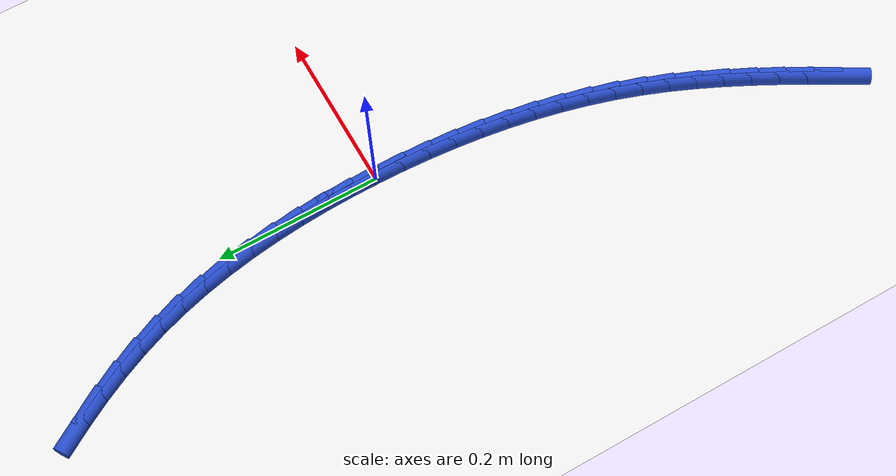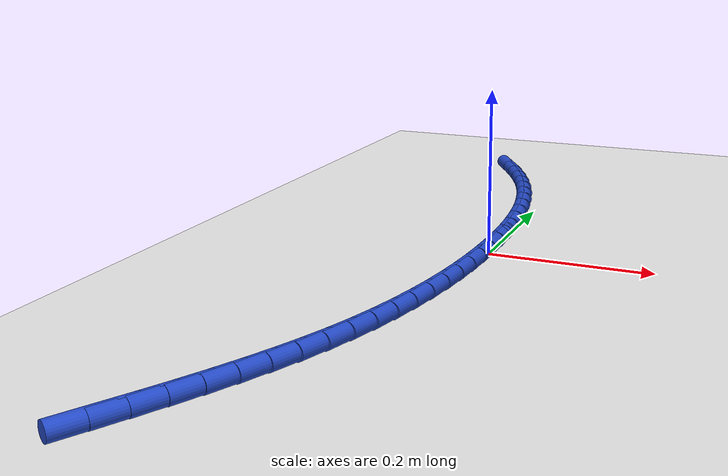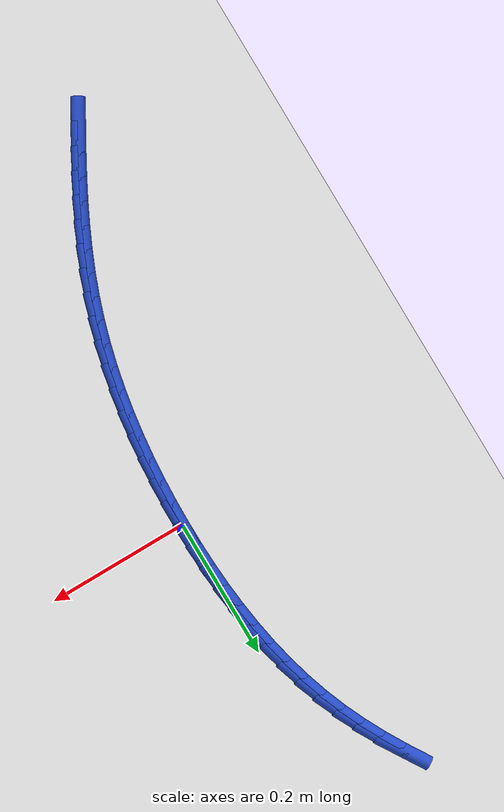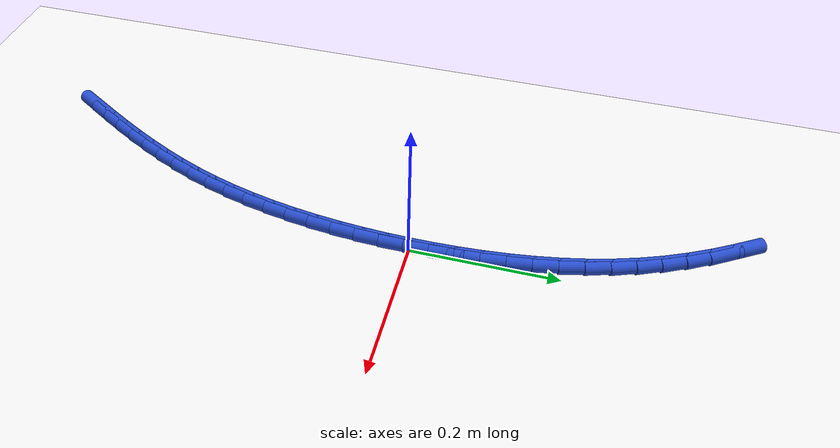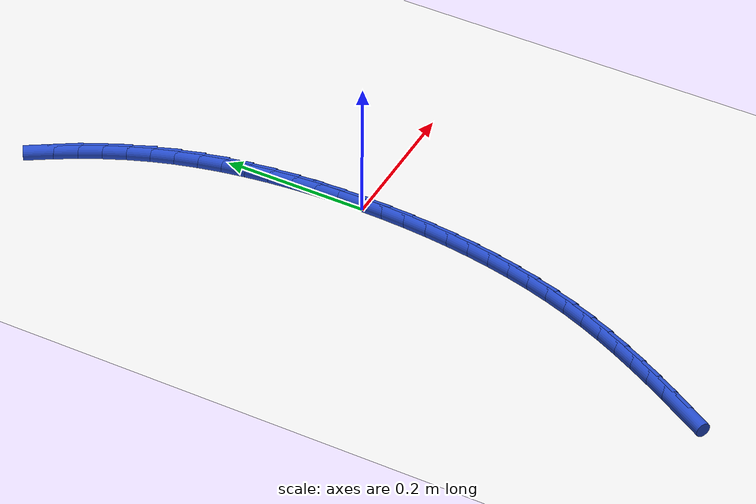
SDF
<sdf version="1.6">
 <world name="default">
  <model name="ground_plane">
   <static>1</static>
   <link name="link">
    <collision name="collision">
     <geometry><plane><normal>0 0 1</normal><size>100 100</size></plane></geometry>
     <surface><friction><ode><mu>100</mu><mu2>50</mu2></ode></friction></surface>
    </collision>
    <visual name="visual">
     <cast_shadows>0</cast_shadows>
     <geometry><plane><normal>0 0 1</normal><size>100 100</size></plane></geometry>
     <material>
      <script><uri>file://media/materials/scripts/gazebo.material</uri><name>Gazebo/WhiteGlow</name></script>
     </material>
    </visual>
   </link>
  </model>
  <model name="line">
   <link name="link_0">
    <pose>-1.474514954580286e-17 -6.245004513516506e-17 0.01 0 1.57 -1.566864676867693</pose>
    <collision name="collision">
     <geometry><cylinder><radius>0.01</radius><length>0.08</length></cylinder></geometry>
    </collision>
    <visual name="visual">
     <material>
      <script><name>Gazebo/Blue</name><uri>file://media/materials/scripts/gazebo.material</uri></script>
     </material>
     <geometry><cylinder><radius>0.01</radius><length>0.08</length></cylinder></geometry>
    </visual>
   </link>
   <link name="link_1">
    <pose>-0.00013139709490835573 0.03342017226882433 0.01 0 1.57 -1.538017861132489</pose>
    <collision name="collision">
     <geometry><cylinder><radius>0.01</radius><length>0.08</length></cylinder></geometry>
    </collision>
    <visual name="visual">
     <material>
      <script><name>Gazebo/Blue</name><uri>file://media/materials/scripts/gazebo.material</uri></script>
     </material>
     <geometry><cylinder><radius>0.01</radius><length>0.08</length></cylinder></geometry>
    </visual>
   </link>
   <link name="link_2">
    <pose>-0.0012262345714651086 0.06680932940006966 0.01 0 1.57 -1.5065309027381384</pose>
    <collision name="collision">
     <geometry><cylinder><radius>0.01</radius><length>0.08</length></cylinder></geometry>
    </collision>
    <visual name="visual">
     <material>
      <script><name>Gazebo/Blue</name><uri>file://media/materials/scripts/gazebo.material</uri></script>
     </material>
     <geometry><cylinder><radius>0.01</radius><length>0.08</length></cylinder></geometry>
    </visual>
   </link>
   <link name="link_3">
    <pose>-0.003367712617615145 0.10008584055856341 0.01 0 1.57 -1.4722322931732916</pose>
    <collision name="collision">
     <geometry><cylinder><radius>0.01</radius><length>0.08</length></cylinder></geometry>
    </collision>
    <visual name="visual">
     <material>
      <script><name>Gazebo/Blue</name><uri>file://media/materials/scripts/gazebo.material</uri></script>
     </material>
     <geometry><cylinder><radius>0.01</radius><length>0.08</length></cylinder></geometry>
    </visual>
   </link>
   <link name="link_4">
    <pose>-0.0066390314213033465 0.1331680749091331 0.01 0 1.57 -1.4349463374511788</pose>
    <collision name="collision">
     <geometry><cylinder><radius>0.01</radius><length>0.08</length></cylinder></geometry>
    </collision>
    <visual name="visual">
     <material>
      <script><name>Gazebo/Blue</name><uri>file://media/materials/scripts/gazebo.material</uri></script>
     </material>
     <geometry><cylinder><radius>0.01</radius><length>0.08</length></cylinder></geometry>
    </visual>
   </link>
   <link name="link_5">
    <pose>-0.01112339117047459 0.16597440161660623 0.01 0 1.57 -1.3945004085183659</pose>
    <collision name="collision">
     <geometry><cylinder><radius>0.01</radius><length>0.08</length></cylinder></geometry>
    </collision>
    <visual name="visual">
     <material>
      <script><name>Gazebo/Blue</name><uri>file://media/materials/scripts/gazebo.material</uri></script>
     </material>
     <geometry><cylinder><radius>0.01</radius><length>0.08</length></cylinder></geometry>
    </visual>
   </link>
   <link name="link_6">
    <pose>-0.016903992053073746 0.1984231898458103 0.01 0 1.57 -1.3507347471098634</pose>
    <collision name="collision">
     <geometry><cylinder><radius>0.01</radius><length>0.08</length></cylinder></geometry>
    </collision>
    <visual name="visual">
     <material>
      <script><name>Gazebo/Blue</name><uri>file://media/materials/scripts/gazebo.material</uri></script>
     </material>
     <geometry><cylinder><radius>0.01</radius><length>0.08</length></cylinder></geometry>
    </visual>
   </link>
   <link name="link_7">
    <pose>-0.024064034257045716 0.23043280876157285 0.01 0 1.57 -1.3035152125114116</pose>
    <collision name="collision">
     <geometry><cylinder><radius>0.01</radius><length>0.08</length></cylinder></geometry>
    </collision>
    <visual name="visual">
     <material>
      <script><name>Gazebo/Blue</name><uri>file://media/materials/scripts/gazebo.material</uri></script>
     </material>
     <geometry><cylinder><radius>0.01</radius><length>0.08</length></cylinder></geometry>
    </visual>
   </link>
   <link name="link_8">
    <pose>-0.032686717970335344 0.2619216275287214 0.01 0 1.57 -1.2527491504995119</pose>
    <collision name="collision">
     <geometry><cylinder><radius>0.01</radius><length>0.08</length></cylinder></geometry>
    </collision>
    <visual name="visual">
     <material>
      <script><name>Gazebo/Blue</name><uri>file://media/materials/scripts/gazebo.material</uri></script>
     </material>
     <geometry><cylinder><radius>0.01</radius><length>0.08</length></cylinder></geometry>
    </visual>
   </link>
   <link name="link_9">
    <pose>-0.04285524338088752 0.2928080153120832 0.01 0 1.57 -1.1985505220806716</pose>
    <collision name="collision">
     <geometry><cylinder><radius>0.01</radius><length>0.08</length></cylinder></geometry>
    </collision>
    <visual name="visual">
     <material>
      <script><name>Gazebo/Blue</name><uri>file://media/materials/scripts/gazebo.material</uri></script>
     </material>
     <geometry><cylinder><radius>0.01</radius><length>0.08</length></cylinder></geometry>
    </visual>
   </link>
   <link name="link_10">
    <pose>-0.05464869573752489 0.323012856468047 0.01 0 1.57 -1.1449753626782009</pose>
    <collision name="collision">
     <geometry><cylinder><radius>0.01</radius><length>0.08</length></cylinder></geometry>
    </collision>
    <visual name="visual">
     <material>
      <script><name>Gazebo/Blue</name><uri>file://media/materials/scripts/gazebo.material</uri></script>
     </material>
     <geometry><cylinder><radius>0.01</radius><length>0.08</length></cylinder></geometry>
    </visual>
   </link>
   <link name="link_11">
    <pose>-0.06803467725487487 0.35252517759726243 0.01 0 1.57 -1.0966031735636597</pose>
    <collision name="collision">
     <geometry><cylinder><radius>0.01</radius><length>0.08</length></cylinder></geometry>
    </collision>
    <visual name="visual">
     <material>
      <script><name>Gazebo/Blue</name><uri>file://media/materials/scripts/gazebo.material</uri></script>
     </material>
     <geometry><cylinder><radius>0.01</radius><length>0.08</length></cylinder></geometry>
    </visual>
   </link>
   <link name="link_12">
    <pose>-0.08285906238558022 0.38140840947273086 0.01 0 1.57 -1.0538123843574</pose>
    <collision name="collision">
     <geometry><cylinder><radius>0.01</radius><length>0.08</length></cylinder></geometry>
    </collision>
    <visual name="visual">
     <material>
      <script><name>Gazebo/Blue</name><uri>file://media/materials/scripts/gazebo.material</uri></script>
     </material>
     <geometry><cylinder><radius>0.01</radius><length>0.08</length></cylinder></geometry>
    </visual>
   </link>
   <link name="link_13">
    <pose>-0.09896155673196752 0.4097297534797995 0.01 0 1.57 -1.016637372810215</pose>
    <collision name="collision">
     <geometry><cylinder><radius>0.01</radius><length>0.08</length></cylinder></geometry>
    </collision>
    <visual name="visual">
     <material>
      <script><name>Gazebo/Blue</name><uri>file://media/materials/scripts/gazebo.material</uri></script>
     </material>
     <geometry><cylinder><radius>0.01</radius><length>0.08</length></cylinder></geometry>
    </visual>
   </link>
   <link name="link_183">
    <pose>-0.15531645477606612 -0.5282698307442465 0.01 0 1.57 1.0455055610870632</pose>
    <collision name="collision">
     <geometry><cylinder><radius>0.01</radius><length>0.08</length></cylinder></geometry>
    </collision>
    <visual name="visual">
     <material>
      <script><name>Gazebo/Blue</name><uri>file://media/materials/scripts/gazebo.material</uri></script>
     </material>
     <geometry><cylinder><radius>0.01</radius><length>0.08</length></cylinder></geometry>
    </visual>
   </link>
   <link name="link_184">
    <pose>-0.13865961455908085 -0.49953174072651585 0.01 0 1.57 1.0606502919981378</pose>
    <collision name="collision">
     <geometry><cylinder><radius>0.01</radius><length>0.08</length></cylinder></geometry>
    </collision>
    <visual name="visual">
     <material>
      <script><name>Gazebo/Blue</name><uri>file://media/materials/scripts/gazebo.material</uri></script>
     </material>
     <geometry><cylinder><radius>0.01</radius><length>0.08</length></cylinder></geometry>
    </visual>
   </link>
   <link name="link_185">
    <pose>-0.12254328021036895 -0.4707294510950153 0.01 0 1.57 1.0800339774072654</pose>
    <collision name="collision">
     <geometry><cylinder><radius>0.01</radius><length>0.08</length></cylinder></geometry>
    </collision>
    <visual name="visual">
     <material>
      <script><name>Gazebo/Blue</name><uri>file://media/materials/scripts/gazebo.material</uri></script>
     </material>
     <geometry><cylinder><radius>0.01</radius><length>0.08</length></cylinder></geometry>
    </visual>
   </link>
   <link name="link_186">
    <pose>-0.10707986472152382 -0.4417916746842301 0.01 0 1.57 1.103701319122056</pose>
    <collision name="collision">
     <geometry><cylinder><radius>0.01</radius><length>0.08</length></cylinder></geometry>
    </collision>
    <visual name="visual">
     <material>
      <script><name>Gazebo/Blue</name><uri>file://media/materials/scripts/gazebo.material</uri></script>
     </material>
     <geometry><cylinder><radius>0.01</radius><length>0.08</length></cylinder></geometry>
    </visual>
   </link>
   <link name="link_187">
    <pose>-0.09238178108413879 -0.4126471243286448 0.01 0 1.57 1.1316662027795106</pose>
    <collision name="collision">
     <geometry><cylinder><radius>0.01</radius><length>0.08</length></cylinder></geometry>
    </collision>
    <visual name="visual">
     <material>
      <script><name>Gazebo/Blue</name><uri>file://media/materials/scripts/gazebo.material</uri></script>
     </material>
     <geometry><cylinder><radius>0.01</radius><length>0.08</length></cylinder></geometry>
    </visual>
   </link>
   <link name="link_188">
    <pose>-0.07856144228980728 -0.38322451286274467 0.01 0 1.57 1.1638980668653753</pose>
    <collision name="collision">
     <geometry><cylinder><radius>0.01</radius><length>0.08</length></cylinder></geometry>
    </collision>
    <visual name="visual">
     <material>
      <script><name>Gazebo/Blue</name><uri>file://media/materials/scripts/gazebo.material</uri></script>
     </material>
     <geometry><cylinder><radius>0.01</radius><length>0.08</length></cylinder></geometry>
    </visual>
   </link>
   <link name="link_189">
    <pose>-0.06573126133012261 -0.3534525531210144 0.01 0 1.57 1.2003065724031703</pose>
    <collision name="collision">
     <geometry><cylinder><radius>0.01</radius><length>0.08</length></cylinder></geometry>
    </collision>
    <visual name="visual">
     <material>
      <script><name>Gazebo/Blue</name><uri>file://media/materials/scripts/gazebo.material</uri></script>
     </material>
     <geometry><cylinder><radius>0.01</radius><length>0.08</length></cylinder></geometry>
    </visual>
   </link>
   <link name="link_190">
    <pose>-0.05400365119667811 -0.3232599579379389 0.01 0 1.57 1.2405821351588775</pose>
    <collision name="collision">
     <geometry><cylinder><radius>0.01</radius><length>0.08</length></cylinder></geometry>
    </collision>
    <visual name="visual">
     <material>
      <script><name>Gazebo/Blue</name><uri>file://media/materials/scripts/gazebo.material</uri></script>
     </material>
     <geometry><cylinder><radius>0.01</radius><length>0.08</length></cylinder></geometry>
    </visual>
   </link>
   <link name="link_191">
    <pose>-0.04348714809742644 -0.2925785072408349 0.01 0 1.57 1.281696483948731</pose>
    <collision name="collision">
     <geometry><cylinder><radius>0.01</radius><length>0.08</length></cylinder></geometry>
    </collision>
    <visual name="visual">
     <material>
      <script><name>Gazebo/Blue</name><uri>file://media/materials/scripts/gazebo.material</uri></script>
     </material>
     <geometry><cylinder><radius>0.01</radius><length>0.08</length></cylinder></geometry>
    </visual>
   </link>
   <link name="link_192">
    <pose>-0.03421378902699798 -0.2614005028252878 0.01 0 1.57 1.3210164718797472</pose>
    <collision name="collision">
     <geometry><cylinder><radius>0.01</radius><length>0.08</length></cylinder></geometry>
    </collision>
    <visual name="visual">
     <material>
      <script><name>Gazebo/Blue</name><uri>file://media/materials/scripts/gazebo.material</uri></script>
     </material>
     <geometry><cylinder><radius>0.01</radius><length>0.08</length></cylinder></geometry>
    </visual>
   </link>
   <link name="link_193">
    <pose>-0.0261455500154926 -0.22977367477538024 0.01 0 1.57 1.3584780729532415</pose>
    <collision name="collision">
     <geometry><cylinder><radius>0.01</radius><length>0.08</length></cylinder></geometry>
    </collision>
    <visual name="visual">
     <material>
      <script><name>Gazebo/Blue</name><uri>file://media/materials/scripts/gazebo.material</uri></script>
     </material>
     <geometry><cylinder><radius>0.01</radius><length>0.08</length></cylinder></geometry>
    </visual>
   </link>
   <link name="link_194">
    <pose>-0.019241821079758057 -0.19774779908320866 0.01 0 1.57 1.394130798673061</pose>
    <collision name="collision">
     <geometry><cylinder><radius>0.01</radius><length>0.08</length></cylinder></geometry>
    </collision>
    <visual name="visual">
     <material>
      <script><name>Gazebo/Blue</name><uri>file://media/materials/scripts/gazebo.material</uri></script>
     </material>
     <geometry><cylinder><radius>0.01</radius><length>0.08</length></cylinder></geometry>
    </visual>
   </link>
   <link name="link_195">
    <pose>-0.013461992236641898 -0.16537265174086893 0.01 0 1.57 1.428037611181458</pose>
    <collision name="collision">
     <geometry><cylinder><radius>0.01</radius><length>0.08</length></cylinder></geometry>
    </collision>
    <visual name="visual">
     <material>
      <script><name>Gazebo/Blue</name><uri>file://media/materials/scripts/gazebo.material</uri></script>
     </material>
     <geometry><cylinder><radius>0.01</radius><length>0.08</length></cylinder></geometry>
    </visual>
   </link>
   <link name="link_196">
    <pose>-0.008765453502991625 -0.1326980087404568 0.01 0 1.57 1.460271234792382</pose>
    <collision name="collision">
     <geometry><cylinder><radius>0.01</radius><length>0.08</length></cylinder></geometry>
    </collision>
    <visual name="visual">
     <material>
      <script><name>Gazebo/Blue</name><uri>file://media/materials/scripts/gazebo.material</uri></script>
     </material>
     <geometry><cylinder><radius>0.01</radius><length>0.08</length></cylinder></geometry>
    </visual>
   </link>
   <link name="link_197">
    <pose>-0.005111594895654771 -0.09977364607406808 0.01 0 1.57 1.4909110275449347</pose>
    <collision name="collision">
     <geometry><cylinder><radius>0.01</radius><length>0.08</length></cylinder></geometry>
    </collision>
    <visual name="visual">
     <material>
      <script><name>Gazebo/Blue</name><uri>file://media/materials/scripts/gazebo.material</uri></script>
     </material>
     <geometry><cylinder><radius>0.01</radius><length>0.08</length></cylinder></geometry>
    </visual>
   </link>
   <link name="link_198">
    <pose>-0.002459806431478872 -0.06664933973379854 0.01 0 1.57 1.5200404070149593</pose>
    <collision name="collision">
     <geometry><cylinder><radius>0.01</radius><length>0.08</length></cylinder></geometry>
    </collision>
    <visual name="visual">
     <material>
      <script><name>Gazebo/Blue</name><uri>file://media/materials/scripts/gazebo.material</uri></script>
     </material>
     <geometry><cylinder><radius>0.01</radius><length>0.08</length></cylinder></geometry>
    </visual>
   </link>
   <link name="link_199">
    <pose>-0.0007694781273114479 -0.033374865711744 0.01 0 1.57 1.5477447934710156</pose>
    <collision name="collision">
     <geometry><cylinder><radius>0.01</radius><length>0.08</length></cylinder></geometry>
    </collision>
    <visual name="visual">
     <material>
      <script><name>Gazebo/Blue</name><uri>file://media/materials/scripts/gazebo.material</uri></script>
     </material>
     <geometry><cylinder><radius>0.01</radius><length>0.08</length></cylinder></geometry>
    </visual>
   </link>
   <link name="link_200">
    <pose>-2.949029909160572e-17 -2.2898349882893854e-16 0.01 0 1.57 -1.567482637468289</pose>
    <collision name="collision">
     <geometry><cylinder><radius>0.01</radius><length>0.08</length></cylinder></geometry>
    </collision>
    <visual name="visual">
     <material>
      <script><name>Gazebo/Blue</name><uri>file://media/materials/scripts/gazebo.material</uri></script>
     </material>
     <geometry><cylinder><radius>0.01</radius><length>0.08</length></cylinder></geometry>
    </visual>
   </link>
   <link name="link_201">
    <pose>-0.00011076206639215429 0.03342548140933771 0.01 0 1.57 -1.5674826374682886</pose>
    <collision name="collision">
     <geometry><cylinder><radius>0.01</radius><length>0.08</length></cylinder></geometry>
    </collision>
    <visual name="visual">
     <material>
      <script><name>Gazebo/Blue</name><uri>file://media/materials/scripts/gazebo.material</uri></script>
     </material>
     <geometry><cylinder><radius>0.01</radius><length>0.08</length></cylinder></geometry>
    </visual>
   </link>
  </model>
 </world>
</sdf>
